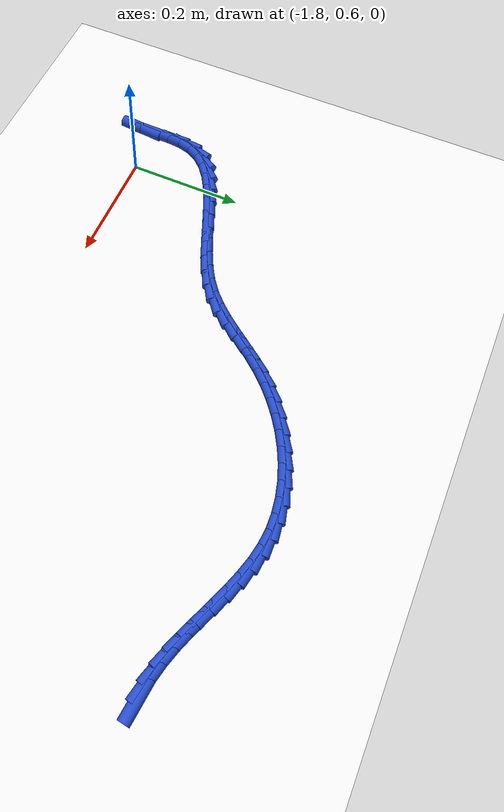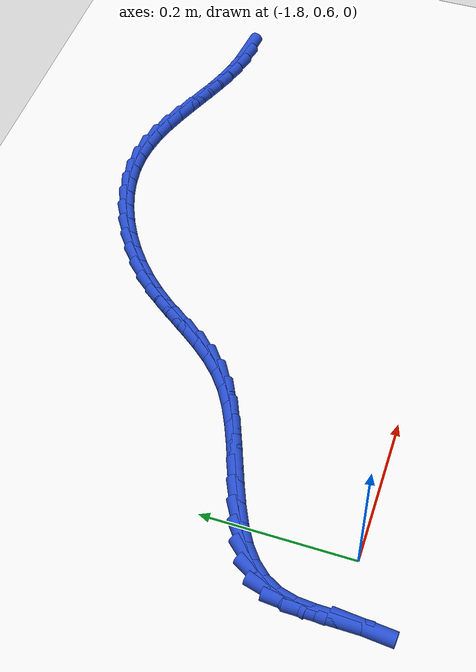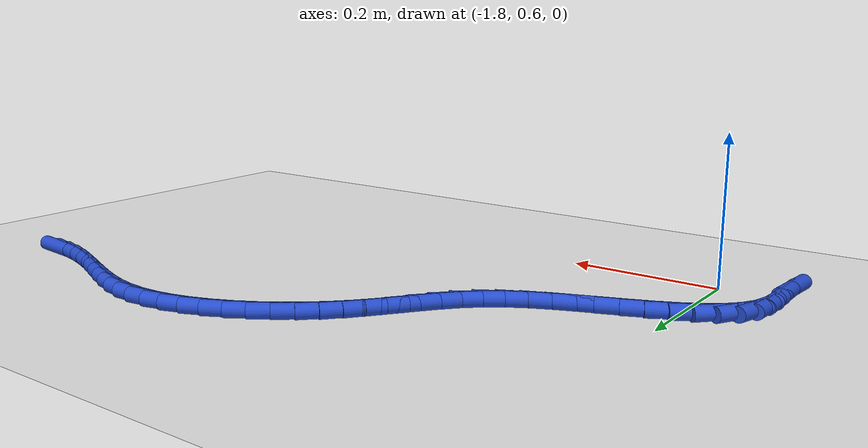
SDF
<sdf version="1.6">
 <world name="default">
  <model name="ground_plane">
   <static>1</static>
   <link name="link">
    <collision name="collision">
     <geometry><plane><normal>0 0 1</normal><size>100 100</size></plane></geometry>
     <surface><friction><ode><mu>100</mu><mu2>50</mu2></ode></friction></surface>
    </collision>
    <visual name="visual">
     <cast_shadows>0</cast_shadows>
     <geometry><plane><normal>0 0 1</normal><size>100 100</size></plane></geometry>
     <material>
      <script><uri>file://media/materials/scripts/gazebo.material</uri><name>Gazebo/WhiteGlow</name></script>
     </material>
    </visual>
   </link>
  </model>
  <model name="line">
   <link name="link_61">
    <pose>-0.9842004859746596 1.0032210166420603 0.01 0 1.57 -0.10936346529876916</pose>
    <collision name="collision">
     <geometry><cylinder><radius>0.01</radius><length>0.08</length></cylinder></geometry>
    </collision>
    <visual name="visual">
     <material>
      <script><name>Gazebo/Blue</name><uri>file://media/materials/scripts/gazebo.material</uri></script>
     </material>
     <geometry><cylinder><radius>0.01</radius><length>0.08</length></cylinder></geometry>
    </visual>
   </link>
   <link name="link_62">
    <pose>-1.0098641614151322 1.0060389285091464 0.01 0 1.57 -0.21470255914398292</pose>
    <collision name="collision">
     <geometry><cylinder><radius>0.01</radius><length>0.08</length></cylinder></geometry>
    </collision>
    <visual name="visual">
     <material>
      <script><name>Gazebo/Blue</name><uri>file://media/materials/scripts/gazebo.material</uri></script>
     </material>
     <geometry><cylinder><radius>0.01</radius><length>0.08</length></cylinder></geometry>
    </visual>
   </link>
   <link name="link_63">
    <pose>-1.035267104461939 1.0115783859292657 0.01 0 1.57 -0.2944523383144027</pose>
    <collision name="collision">
     <geometry><cylinder><radius>0.01</radius><length>0.08</length></cylinder></geometry>
    </collision>
    <visual name="visual">
     <material>
      <script><name>Gazebo/Blue</name><uri>file://media/materials/scripts/gazebo.material</uri></script>
     </material>
     <geometry><cylinder><radius>0.01</radius><length>0.08</length></cylinder></geometry>
    </visual>
   </link>
   <link name="link_64">
    <pose>-1.060473634797425 1.0192227222262402 0.01 0 1.57 -0.3491933220874344</pose>
    <collision name="collision">
     <geometry><cylinder><radius>0.01</radius><length>0.08</length></cylinder></geometry>
    </collision>
    <visual name="visual">
     <material>
      <script><name>Gazebo/Blue</name><uri>file://media/materials/scripts/gazebo.material</uri></script>
     </material>
     <geometry><cylinder><radius>0.01</radius><length>0.08</length></cylinder></geometry>
    </visual>
   </link>
   <link name="link_65">
    <pose>-1.0855483140318336 1.0283527790102645 0.01 0 1.57 -0.38028790479934493</pose>
    <collision name="collision">
     <geometry><cylinder><radius>0.01</radius><length>0.08</length></cylinder></geometry>
    </collision>
    <visual name="visual">
     <material>
      <script><name>Gazebo/Blue</name><uri>file://media/materials/scripts/gazebo.material</uri></script>
     </material>
     <geometry><cylinder><radius>0.01</radius><length>0.08</length></cylinder></geometry>
    </visual>
   </link>
   <link name="link_66">
    <pose>-1.1105557037754084 1.038349397891534 0.01 0 1.57 -0.38882711111170243</pose>
    <collision name="collision">
     <geometry><cylinder><radius>0.01</radius><length>0.08</length></cylinder></geometry>
    </collision>
    <visual name="visual">
     <material>
      <script><name>Gazebo/Blue</name><uri>file://media/materials/scripts/gazebo.material</uri></script>
     </material>
     <geometry><cylinder><radius>0.01</radius><length>0.08</length></cylinder></geometry>
    </visual>
   </link>
   <link name="link_67">
    <pose>-1.1355603656383926 1.0485934204802445 0.01 0 1.57 -0.37518751675885287</pose>
    <collision name="collision">
     <geometry><cylinder><radius>0.01</radius><length>0.08</length></cylinder></geometry>
    </collision>
    <visual name="visual">
     <material>
      <script><name>Gazebo/Blue</name><uri>file://media/materials/scripts/gazebo.material</uri></script>
     </material>
     <geometry><cylinder><radius>0.01</radius><length>0.08</length></cylinder></geometry>
    </visual>
   </link>
   <link name="link_68">
    <pose>-1.160626861231029 1.0584656883865915 0.01 0 1.57 -0.33893064341563844</pose>
    <collision name="collision">
     <geometry><cylinder><radius>0.01</radius><length>0.08</length></cylinder></geometry>
    </collision>
    <visual name="visual">
     <material>
      <script><name>Gazebo/Blue</name><uri>file://media/materials/scripts/gazebo.material</uri></script>
     </material>
     <geometry><cylinder><radius>0.01</radius><length>0.08</length></cylinder></geometry>
    </visual>
   </link>
   <link name="link_69">
    <pose>-1.1858197521635612 1.0673470432207701 0.01 0 1.57 -0.2789826333580226</pose>
    <collision name="collision">
     <geometry><cylinder><radius>0.01</radius><length>0.08</length></cylinder></geometry>
    </collision>
    <visual name="visual">
     <material>
      <script><name>Gazebo/Blue</name><uri>file://media/materials/scripts/gazebo.material</uri></script>
     </material>
     <geometry><cylinder><radius>0.01</radius><length>0.08</length></cylinder></geometry>
    </visual>
   </link>
   <link name="link_70">
    <pose>-1.211203600046233 1.0746183265929763 0.01 0 1.57 -0.194175048397495</pose>
    <collision name="collision">
     <geometry><cylinder><radius>0.01</radius><length>0.08</length></cylinder></geometry>
    </collision>
    <visual name="visual">
     <material>
      <script><name>Gazebo/Blue</name><uri>file://media/materials/scripts/gazebo.material</uri></script>
     </material>
     <geometry><cylinder><radius>0.01</radius><length>0.08</length></cylinder></geometry>
    </visual>
   </link>
   <link name="link_71">
    <pose>-1.2368429664892866 1.079660380113405 0.01 0 1.57 -0.08460198125352052</pose>
    <collision name="collision">
     <geometry><cylinder><radius>0.01</radius><length>0.08</length></cylinder></geometry>
    </collision>
    <visual name="visual">
     <material>
      <script><name>Gazebo/Blue</name><uri>file://media/materials/scripts/gazebo.material</uri></script>
     </material>
     <geometry><cylinder><radius>0.01</radius><length>0.08</length></cylinder></geometry>
    </visual>
   </link>
   <link name="link_72">
    <pose>-1.2627997741751016 1.0818616317944783 0.01 0 1.57 0.03502516665725194</pose>
    <collision name="collision">
     <geometry><cylinder><radius>0.01</radius><length>0.08</length></cylinder></geometry>
    </collision>
    <visual name="visual">
     <material>
      <script><name>Gazebo/Blue</name><uri>file://media/materials/scripts/gazebo.material</uri></script>
     </material>
     <geometry><cylinder><radius>0.01</radius><length>0.08</length></cylinder></geometry>
    </visual>
   </link>
   <link name="link_73">
    <pose>-1.2890203320162057 1.080942876657463 0.01 0 1.57 0.1459978175347038</pose>
    <collision name="collision">
     <geometry><cylinder><radius>0.01</radius><length>0.08</length></cylinder></geometry>
    </collision>
    <visual name="visual">
     <material>
      <script><name>Gazebo/Blue</name><uri>file://media/materials/scripts/gazebo.material</uri></script>
     </material>
     <geometry><cylinder><radius>0.01</radius><length>0.08</length></cylinder></geometry>
    </visual>
   </link>
   <link name="link_74">
    <pose>-1.3152927600365851 1.0770796718837536 0.01 0 1.57 0.2476461349133112</pose>
    <collision name="collision">
     <geometry><cylinder><radius>0.01</radius><length>0.08</length></cylinder></geometry>
    </collision>
    <visual name="visual">
     <material>
      <script><name>Gazebo/Blue</name><uri>file://media/materials/scripts/gazebo.material</uri></script>
     </material>
     <geometry><cylinder><radius>0.01</radius><length>0.08</length></cylinder></geometry>
    </visual>
   </link>
   <link name="link_75">
    <pose>-1.341393761041711 1.0704803969281822 0.01 0 1.57 0.3411649481984167</pose>
    <collision name="collision">
     <geometry><cylinder><radius>0.01</radius><length>0.08</length></cylinder></geometry>
    </collision>
    <visual name="visual">
     <material>
      <script><name>Gazebo/Blue</name><uri>file://media/materials/scripts/gazebo.material</uri></script>
     </material>
     <geometry><cylinder><radius>0.01</radius><length>0.08</length></cylinder></geometry>
    </visual>
   </link>
   <link name="link_76">
    <pose>-1.3671000378370541 1.061353431245579 0.01 0 1.57 0.4280313531514889</pose>
    <collision name="collision">
     <geometry><cylinder><radius>0.01</radius><length>0.08</length></cylinder></geometry>
    </collision>
    <visual name="visual">
     <material>
      <script><name>Gazebo/Blue</name><uri>file://media/materials/scripts/gazebo.material</uri></script>
     </material>
     <geometry><cylinder><radius>0.01</radius><length>0.08</length></cylinder></geometry>
    </visual>
   </link>
   <link name="link_77">
    <pose>-1.3921882932280856 1.0499071542907763 0.01 0 1.57 0.5098263712969856</pose>
    <collision name="collision">
     <geometry><cylinder><radius>0.01</radius><length>0.08</length></cylinder></geometry>
    </collision>
    <visual name="visual">
     <material>
      <script><name>Gazebo/Blue</name><uri>file://media/materials/scripts/gazebo.material</uri></script>
     </material>
     <geometry><cylinder><radius>0.01</radius><length>0.08</length></cylinder></geometry>
    </visual>
   </link>
   <link name="link_78">
    <pose>-1.416435230020277 1.0363499455186047 0.01 0 1.57 0.5881483377825939</pose>
    <collision name="collision">
     <geometry><cylinder><radius>0.01</radius><length>0.08</length></cylinder></geometry>
    </collision>
    <visual name="visual">
     <material>
      <script><name>Gazebo/Blue</name><uri>file://media/materials/scripts/gazebo.material</uri></script>
     </material>
     <geometry><cylinder><radius>0.01</radius><length>0.08</length></cylinder></geometry>
    </visual>
   </link>
   <link name="link_79">
    <pose>-1.4396175510190992 1.0208901843838967 0.01 0 1.57 0.6645892082786696</pose>
    <collision name="collision">
     <geometry><cylinder><radius>0.01</radius><length>0.08</length></cylinder></geometry>
    </collision>
    <visual name="visual">
     <material>
      <script><name>Gazebo/Blue</name><uri>file://media/materials/scripts/gazebo.material</uri></script>
     </material>
     <geometry><cylinder><radius>0.01</radius><length>0.08</length></cylinder></geometry>
    </visual>
   </link>
   <link name="link_80">
    <pose>-1.4615119590300225 1.0037362503414824 0.01 0 1.57 0.7407497512158787</pose>
    <collision name="collision">
     <geometry><cylinder><radius>0.01</radius><length>0.08</length></cylinder></geometry>
    </collision>
    <visual name="visual">
     <material>
      <script><name>Gazebo/Blue</name><uri>file://media/materials/scripts/gazebo.material</uri></script>
     </material>
     <geometry><cylinder><radius>0.01</radius><length>0.08</length></cylinder></geometry>
    </visual>
   </link>
   <link name="link_81">
    <pose>-1.4818951568585195 0.9850965228461942 0.01 0 1.57 0.8182644623776635</pose>
    <collision name="collision">
     <geometry><cylinder><radius>0.01</radius><length>0.08</length></cylinder></geometry>
    </collision>
    <visual name="visual">
     <material>
      <script><name>Gazebo/Blue</name><uri>file://media/materials/scripts/gazebo.material</uri></script>
     </material>
     <geometry><cylinder><radius>0.01</radius><length>0.08</length></cylinder></geometry>
    </visual>
   </link>
   <link name="link_82">
    <pose>-1.5005442034342371 0.9651794955689682 0.01 0 1.57 0.8904824447617848</pose>
    <collision name="collision">
     <geometry><cylinder><radius>0.01</radius><length>0.08</length></cylinder></geometry>
    </collision>
    <visual name="visual">
     <material>
      <script><name>Gazebo/Blue</name><uri>file://media/materials/scripts/gazebo.material</uri></script>
     </material>
     <geometry><cylinder><radius>0.01</radius><length>0.08</length></cylinder></geometry>
    </visual>
   </link>
   <link name="link_83">
    <pose>-1.5174659086310258 0.9442673478774362 0.01 0 1.57 0.9345878860380101</pose>
    <collision name="collision">
     <geometry><cylinder><radius>0.01</radius><length>0.08</length></cylinder></geometry>
    </collision>
    <visual name="visual">
     <material>
      <script><name>Gazebo/Blue</name><uri>file://media/materials/scripts/gazebo.material</uri></script>
     </material>
     <geometry><cylinder><radius>0.01</radius><length>0.08</length></cylinder></geometry>
    </visual>
   </link>
   <link name="link_84">
    <pose>-1.5332916779221648 0.9228425793688448 0.01 0 1.57 0.9454484998490749</pose>
    <collision name="collision">
     <geometry><cylinder><radius>0.01</radius><length>0.08</length></cylinder></geometry>
    </collision>
    <visual name="visual">
     <material>
      <script><name>Gazebo/Blue</name><uri>file://media/materials/scripts/gazebo.material</uri></script>
     </material>
     <geometry><cylinder><radius>0.01</radius><length>0.08</length></cylinder></geometry>
    </visual>
   </link>
   <link name="link_85">
    <pose>-1.548758051607564 0.9014214084700798 0.01 0 1.57 0.9221859937463086</pose>
    <collision name="collision">
     <geometry><cylinder><radius>0.01</radius><length>0.08</length></cylinder></geometry>
    </collision>
    <visual name="visual">
     <material>
      <script><name>Gazebo/Blue</name><uri>file://media/materials/scripts/gazebo.material</uri></script>
     </material>
     <geometry><cylinder><radius>0.01</radius><length>0.08</length></cylinder></geometry>
    </visual>
   </link>
   <link name="link_86">
    <pose>-1.5646015699871343 0.8805200536080269 0.01 0 1.57 0.8642111557782782</pose>
    <collision name="collision">
     <geometry><cylinder><radius>0.01</radius><length>0.08</length></cylinder></geometry>
    </collision>
    <visual name="visual">
     <material>
      <script><name>Gazebo/Blue</name><uri>file://media/materials/scripts/gazebo.material</uri></script>
     </material>
     <geometry><cylinder><radius>0.01</radius><length>0.08</length></cylinder></geometry>
    </visual>
   </link>
   <link name="link_87">
    <pose>-1.581558773360784 0.8606547332095724 0.01 0 1.57 0.772081209511839</pose>
    <collision name="collision">
     <geometry><cylinder><radius>0.01</radius><length>0.08</length></cylinder></geometry>
    </collision>
    <visual name="visual">
     <material>
      <script><name>Gazebo/Blue</name><uri>file://media/materials/scripts/gazebo.material</uri></script>
     </material>
     <geometry><cylinder><radius>0.01</radius><length>0.08</length></cylinder></geometry>
    </visual>
   </link>
   <link name="link_88">
    <pose>-1.6003662020284248 0.8423416657016025 0.01 0 1.57 0.6503894690682136</pose>
    <collision name="collision">
     <geometry><cylinder><radius>0.01</radius><length>0.08</length></cylinder></geometry>
    </collision>
    <visual name="visual">
     <material>
      <script><name>Gazebo/Blue</name><uri>file://media/materials/scripts/gazebo.material</uri></script>
     </material>
     <geometry><cylinder><radius>0.01</radius><length>0.08</length></cylinder></geometry>
    </visual>
   </link>
   <link name="link_89">
    <pose>-1.621738060582511 0.8260815469000785 0.01 0 1.57 0.5330652034584787</pose>
    <collision name="collision">
     <geometry><cylinder><radius>0.01</radius><length>0.08</length></cylinder></geometry>
    </collision>
    <visual name="visual">
     <material>
      <script><name>Gazebo/Blue</name><uri>file://media/materials/scripts/gazebo.material</uri></script>
     </material>
     <geometry><cylinder><radius>0.01</radius><length>0.08</length></cylinder></geometry>
    </visual>
   </link>
   <link name="link_90">
    <pose>-1.645736146481191 0.8119216702771855 0.01 0 1.57 0.4497972044218133</pose>
    <collision name="collision">
     <geometry><cylinder><radius>0.01</radius><length>0.08</length></cylinder></geometry>
    </collision>
    <visual name="visual">
     <material>
      <script><name>Gazebo/Blue</name><uri>file://media/materials/scripts/gazebo.material</uri></script>
     </material>
     <geometry><cylinder><radius>0.01</radius><length>0.08</length></cylinder></geometry>
    </visual>
   </link>
   <link name="link_91">
    <pose>-1.6716820078079666 0.7993948793799058 0.01 0 1.57 0.3968480377009785</pose>
    <collision name="collision">
     <geometry><cylinder><radius>0.01</radius><length>0.08</length></cylinder></geometry>
    </collision>
    <visual name="visual">
     <material>
      <script><name>Gazebo/Blue</name><uri>file://media/materials/scripts/gazebo.material</uri></script>
     </material>
     <geometry><cylinder><radius>0.01</radius><length>0.08</length></cylinder></geometry>
    </visual>
   </link>
   <link name="link_92">
    <pose>-1.6988572005672733 0.7880062245239311 0.01 0 1.57 0.3702215713242803</pose>
    <collision name="collision">
     <geometry><cylinder><radius>0.01</radius><length>0.08</length></cylinder></geometry>
    </collision>
    <visual name="visual">
     <material>
      <script><name>Gazebo/Blue</name><uri>file://media/materials/scripts/gazebo.material</uri></script>
     </material>
     <geometry><cylinder><radius>0.01</radius><length>0.08</length></cylinder></geometry>
    </visual>
   </link>
   <link name="link_93">
    <pose>-1.7265432807635486 0.7772607560249525 0.01 0 1.57 0.3680792193486451</pose>
    <collision name="collision">
     <geometry><cylinder><radius>0.01</radius><length>0.08</length></cylinder></geometry>
    </collision>
    <visual name="visual">
     <material>
      <script><name>Gazebo/Blue</name><uri>file://media/materials/scripts/gazebo.material</uri></script>
     </material>
     <geometry><cylinder><radius>0.01</radius><length>0.08</length></cylinder></geometry>
    </visual>
   </link>
   <link name="link_94">
    <pose>-1.7540218044012321 0.766663524198662 0.01 0 1.57 0.39094681733571146</pose>
    <collision name="collision">
     <geometry><cylinder><radius>0.01</radius><length>0.08</length></cylinder></geometry>
    </collision>
    <visual name="visual">
     <material>
      <script><name>Gazebo/Blue</name><uri>file://media/materials/scripts/gazebo.material</uri></script>
     </material>
     <geometry><cylinder><radius>0.01</radius><length>0.08</length></cylinder></geometry>
    </visual>
   </link>
   <link name="link_95">
    <pose>-1.7805743274847585 0.755719579360751 0.01 0 1.57 0.44194930762105544</pose>
    <collision name="collision">
     <geometry><cylinder><radius>0.01</radius><length>0.08</length></cylinder></geometry>
    </collision>
    <visual name="visual">
     <material>
      <script><name>Gazebo/Blue</name><uri>file://media/materials/scripts/gazebo.material</uri></script>
     </material>
     <geometry><cylinder><radius>0.01</radius><length>0.08</length></cylinder></geometry>
    </visual>
   </link>
   <link name="link_96">
    <pose>-1.8054824060185668 0.743933971826911 0.01 0 1.57 0.5271095120397673</pose>
    <collision name="collision">
     <geometry><cylinder><radius>0.01</radius><length>0.08</length></cylinder></geometry>
    </collision>
    <visual name="visual">
     <material>
      <script><name>Gazebo/Blue</name><uri>file://media/materials/scripts/gazebo.material</uri></script>
     </material>
     <geometry><cylinder><radius>0.01</radius><length>0.08</length></cylinder></geometry>
    </visual>
   </link>
   <link name="link_97">
    <pose>-1.828027596007094 0.7308117519128334 0.01 0 1.57 0.6551009223744596</pose>
    <collision name="collision">
     <geometry><cylinder><radius>0.01</radius><length>0.08</length></cylinder></geometry>
    </collision>
    <visual name="visual">
     <material>
      <script><name>Gazebo/Blue</name><uri>file://media/materials/scripts/gazebo.material</uri></script>
     </material>
     <geometry><cylinder><radius>0.01</radius><length>0.08</length></cylinder></geometry>
    </visual>
   </link>
   <link name="link_98">
    <pose>-1.8474914534547773 0.7158579699342098 0.01 0 1.57 0.8344177027174352</pose>
    <collision name="collision">
     <geometry><cylinder><radius>0.01</radius><length>0.08</length></cylinder></geometry>
    </collision>
    <visual name="visual">
     <material>
      <script><name>Gazebo/Blue</name><uri>file://media/materials/scripts/gazebo.material</uri></script>
     </material>
     <geometry><cylinder><radius>0.01</radius><length>0.08</length></cylinder></geometry>
    </visual>
   </link>
   <link name="link_99">
    <pose>-1.8631555343660535 0.6985776762067314 0.01 0 1.57 1.0645262035774412</pose>
    <collision name="collision">
     <geometry><cylinder><radius>0.01</radius><length>0.08</length></cylinder></geometry>
    </collision>
    <visual name="visual">
     <material>
      <script><name>Gazebo/Blue</name><uri>file://media/materials/scripts/gazebo.material</uri></script>
     </material>
     <geometry><cylinder><radius>0.01</radius><length>0.08</length></cylinder></geometry>
    </visual>
   </link>
   <link name="link_100">
    <pose>-1.8743013947453613 0.6784759210460904 0.01 0 1.57 1.3170388938950526</pose>
    <collision name="collision">
     <geometry><cylinder><radius>0.01</radius><length>0.08</length></cylinder></geometry>
    </collision>
    <visual name="visual">
     <material>
      <script><name>Gazebo/Blue</name><uri>file://media/materials/scripts/gazebo.material</uri></script>
     </material>
     <geometry><cylinder><radius>0.01</radius><length>0.08</length></cylinder></geometry>
    </visual>
   </link>
   <link name="link_101">
    <pose>-1.8803528013970248 0.6551427856534912 0.01 0 1.57 1.4940660795180205</pose>
    <collision name="collision">
     <geometry><cylinder><radius>0.01</radius><length>0.08</length></cylinder></geometry>
    </collision>
    <visual name="visual">
     <material>
      <script><name>Gazebo/Blue</name><uri>file://media/materials/scripts/gazebo.material</uri></script>
     </material>
     <geometry><cylinder><radius>0.01</radius><length>0.08</length></cylinder></geometry>
    </visual>
   </link>
   <link name="link_102">
    <pose>-1.8823522181861274 0.6291362048992136 0.01 0 1.57 1.5701398484160554</pose>
    <collision name="collision">
     <geometry><cylinder><radius>0.01</radius><length>0.08</length></cylinder></geometry>
    </collision>
    <visual name="visual">
     <material>
      <script><name>Gazebo/Blue</name><uri>file://media/materials/scripts/gazebo.material</uri></script>
     </material>
     <geometry><cylinder><radius>0.01</radius><length>0.08</length></cylinder></geometry>
    </visual>
   </link>
   <link name="link_103">
    <pose>-1.8823702761548473 0.6016288768472843 0.01 0 1.57 1.566348826974336</pose>
    <collision name="collision">
     <geometry><cylinder><radius>0.01</radius><length>0.08</length></cylinder></geometry>
    </collision>
    <visual name="visual">
     <material>
      <script><name>Gazebo/Blue</name><uri>file://media/materials/scripts/gazebo.material</uri></script>
     </material>
     <geometry><cylinder><radius>0.01</radius><length>0.08</length></cylinder></geometry>
    </visual>
   </link>
   <link name="link_104">
    <pose>-1.8824940311286047 0.5738033202916898 0.01 0 1.57 1.4850869771463113</pose>
    <collision name="collision">
     <geometry><cylinder><radius>0.01</radius><length>0.08</length></cylinder></geometry>
    </collision>
    <visual name="visual">
     <material>
      <script><name>Gazebo/Blue</name><uri>file://media/materials/scripts/gazebo.material</uri></script>
     </material>
     <geometry><cylinder><radius>0.01</radius><length>0.08</length></cylinder></geometry>
    </visual>
   </link>
  </model>
 </world>
</sdf>
